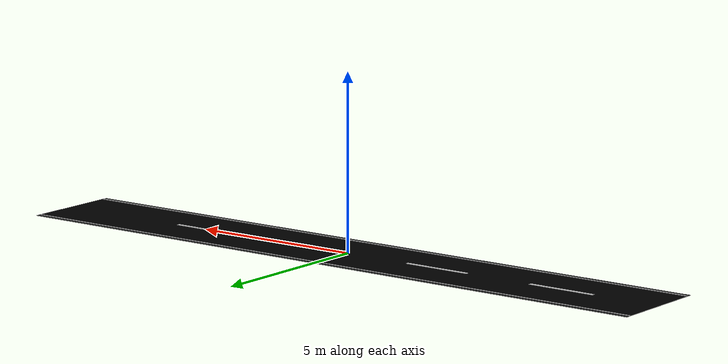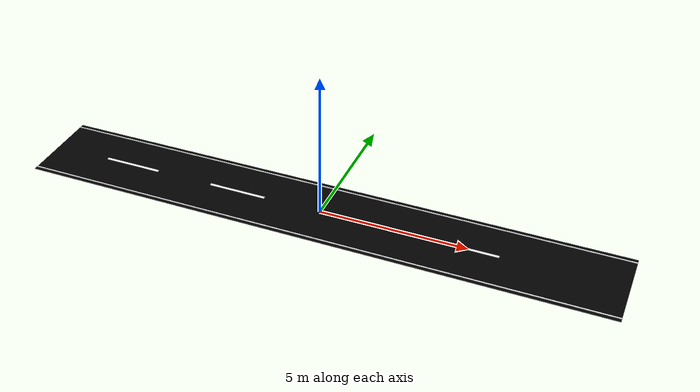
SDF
<?xml version="1.0" ?>
<sdf version="1.6">
  <model name="road">
    <static>true</static>
    <link name="link">
      <!-- Main Road Visual -->
      <visual name="road_visual">
        <geometry>
          <box>
            <size>20 3 0.01</size>
          </box>
        </geometry>
        <material>
          <ambient>0.0 0.0 0.0 1</ambient> <!-- Full black -->
          <diffuse>0.0 0.0 0.0 1</diffuse>
        </material>
      </visual>

      <!-- Broken Middle Line -->
      <visual name="middle_line_1">
        <pose>-7 0 0.005 0 0 0</pose> <!-- Segment 1 -->
        <geometry>
          <box>
            <size>2 0.1 0.01</size>
          </box>
        </geometry>
        <material>
          <ambient>1.0 1.0 1.0 1</ambient> <!-- White color -->
        </material>
      </visual>
      <visual name="middle_line_2">
        <pose>-3 0 0.005 0 0 0</pose> <!-- Segment 2 -->
        <geometry>
          <box>
            <size>2 0.1 0.01</size>
          </box>
        </geometry>
        <material>
          <ambient>1.0 1.0 1.0 1</ambient> <!-- White color -->
        </material>
      </visual>
      <visual name="middle_line_3">
        <pose>1 0 0.005 0 0 0</pose> <!-- Segment 3 -->
        <geometry>
          <box>
            <size>2 0.1 0.01</size>
          </box>
        </geometry>
        <material>
          <ambient>1.0 1.0 1.0 1</ambient> <!-- White color -->
        </material>
      </visual>
      <visual name="middle_line_4">
        <pose>5 0 0.005 0 0 0</pose> <!-- Segment 4 -->
        <geometry>
          <box>
            <size>2 0.1 0.01</size>
          </box>
        </geometry>
        <material>
          <ambient>1.0 1.0 1.0 1</ambient> <!-- White color -->
        </material>
      </visual>

      <!-- Left Side Line -->
      <visual name="left_side_line">
        <pose>0 1.35 0.005 0 0 0</pose> <!-- Slightly above the road -->
        <geometry>
          <box>
            <size>20 0.05 0.01</size>
          </box>
        </geometry>
        <material>
          <ambient>1.0 1.0 1.0 1</ambient> <!-- White color -->
        </material>
      </visual>

      <!-- Right Side Line -->
      <visual name="right_side_line">
        <pose>0 -1.35 0.005 0 0 0</pose> <!-- Slightly above the road -->
        <geometry>
          <box>
            <size>20 0.05 0.01</size>
          </box>
        </geometry>
        <material>
          <ambient>1.0 1.0 1.0 1</ambient> <!-- White color -->
        </material>
      </visual>

      <!-- Collision for the Road -->
      <collision name="road_collision">
        <geometry>
          <box>
            <size>20 3 0.01</size>
          </box>
        </geometry>
      </collision>
    </link>
  </model>
</sdf>
